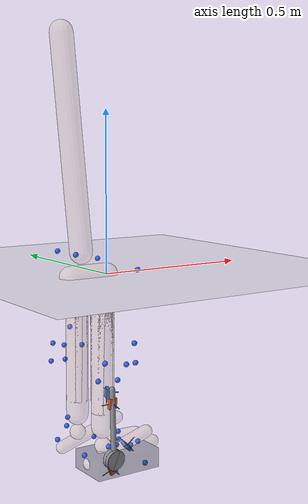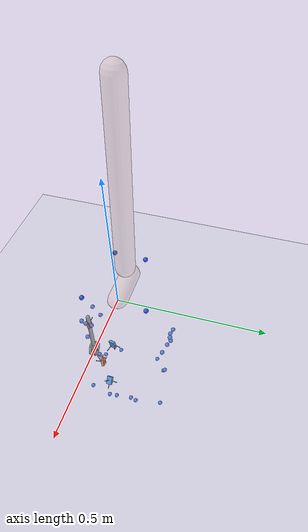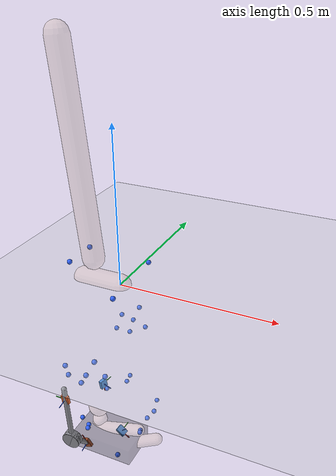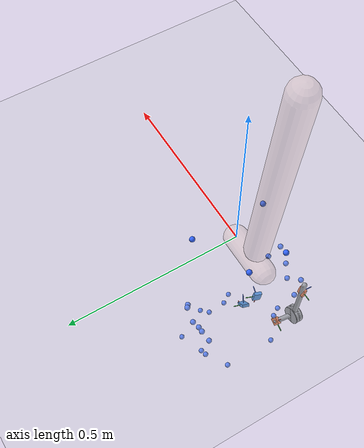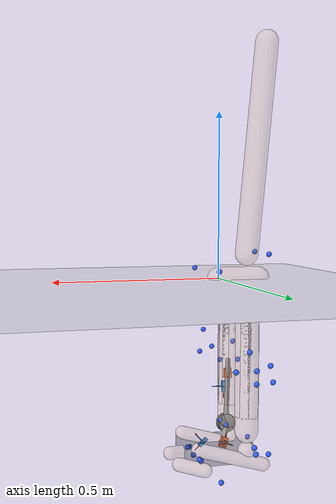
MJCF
<mujoco model="AB13">
  <compiler angle="radian" autolimits="true"/>
  <option timestep="0.005" gravity="0 0 -9.81"><flag contact="disable"/></option>
  <visual><global offwidth="1600" offheight="1200"/>
    <headlight ambient="0.55 0.55 0.55" diffuse="0.6 0.6 0.6"/></visual>
  <default><joint limited="false" damping="0"/><geom contype="0" conaffinity="0"/></default>
  <asset>
    <texture name="grid" type="2d" builtin="checker" rgb1="0.75 0.77 0.8" rgb2="0.85 0.87 0.9" width="512" height="512"/>
    <material name="grid" texture="grid" texrepeat="2 2" texuniform="true"/>
    <material name="skin" rgba="0.85 0.72 0.62 0.28"/>
  </asset>
  <worldbody>
    <light pos="0 0 4" dir="0 0 -1"/>
    <geom name="floor" type="plane" size="0 0 0.05" material="grid"/>
    <body name="pelvis" pos="0 0 0" quat="1 0 0 0">
      <joint name="pelvis_tx" type="slide" axis="1 0 0"/>
      <joint name="pelvis_ty" type="slide" axis="0 0 1"/>
      <joint name="pelvis_tz" type="slide" axis="0 -1 0"/>
      <joint name="pelvis_tilt" type="hinge" axis="0 -1 0"/>
      <joint name="pelvis_list" type="hinge" axis="1 0 0"/>
      <joint name="pelvis_rotation" type="hinge" axis="0 0 1"/>
      <inertial pos="-0.063103539 0 0" mass="8.94477" diaginertia="0.089447731 0.089447731 0.089447731"/>
      <geom type="capsule" fromto="0 0 0 -0.12620708 0 0" size="0.035" material="skin" mass="0"/>
      <site name="m_R_ASIS" pos="0.039352772 -0.1105126 0.024330353" size="0.008" rgba="0.2 0.4 1 1" group="2"/>
      <site name="m_L_ASIS" pos="0.039034642 0.11411929 0.031244651" size="0.008" rgba="0.2 0.4 1 1" group="2"/>
      <site name="m_L_PSIS" pos="-0.13862256 0.05601487 0.07470009" size="0.008" rgba="0.2 0.4 1 1" group="2"/>
      <site name="m_R_PSIS" pos="-0.1399088 -0.054829012 0.075996452" size="0.008" rgba="0.2 0.4 1 1" group="2"/>
      <body name="femur_r" pos="-0.063103539 -0.074528224 -0.058997792" quat="1 0 0 0">
        <joint name="hip_flexion_r" type="hinge" axis="0 -1 0"/>
        <joint name="hip_adduction_r" type="hinge" axis="1 0 0"/>
        <joint name="hip_rotation_r" type="hinge" axis="0 0 1"/>
        <inertial pos="0 0 -0.17254222" mass="7.06453" diaginertia="0.070645251 0.070645251 0.070645251"/>
        <geom type="capsule" fromto="0 0 0 0 0 -0.34508443" size="0.035" material="skin" mass="0"/>
        <site name="m_R_Thigh_Upper" pos="0.056050089 -0.087431832 -0.12410132" size="0.008" rgba="0.2 0.4 1 1" group="2"/>
        <site name="m_R_Thigh_Front" pos="0.075307148 -0.064751227 -0.19057419" size="0.008" rgba="0.2 0.4 1 1" group="2"/>
        <site name="m_R_Thigh_Rear" pos="0.02474407 -0.092379118 -0.18217937" size="0.008" rgba="0.2 0.4 1 1" group="2"/>
        <site name="m_R_Knee_Lat" pos="0.000352359 -0.074967183 -0.42578159" size="0.008" rgba="0.2 0.4 1 1" group="2"/>
        <body name="tibia_r" pos="0 0 0" quat="1 0 0 0">
<geom name="gt_shank_axis_x" type="capsule" size="0.0012" fromto="0.02010 0.00490 -0.29100 0.02078 0.01085 -0.32549" rgba="1 0.1 0.1 1" contype="0" conaffinity="0" mass="0"/>
<geom name="gt_shank_axis_y" type="capsule" size="0.0012" fromto="0.02010 0.00490 -0.29100 0.02994 0.03797 -0.28510" rgba="0.1 0.8 0.1 1" contype="0" conaffinity="0" mass="0"/>
<geom name="gt_shank_axis_z" type="capsule" size="0.0012" fromto="0.02010 0.00490 -0.29100 0.05368 -0.00491 -0.29203" rgba="0.1 0.3 1 1" contype="0" conaffinity="0" mass="0"/>
<geom name="exo_shank_axis_x" type="capsule" size="0.0012" fromto="-0.04149 -0.12005 -0.28117 -0.04210 -0.12588 -0.24666" rgba="1 0.1 0.1 1" contype="0" conaffinity="0" mass="0"/>
<geom name="exo_shank_axis_y" type="capsule" size="0.0012" fromto="-0.04149 -0.12005 -0.28117 -0.07648 -0.11989 -0.28176" rgba="0.1 0.8 0.1 1" contype="0" conaffinity="0" mass="0"/>
<geom name="exo_shank_axis_z" type="capsule" size="0.0012" fromto="-0.04149 -0.12005 -0.28117 -0.04155 -0.15456 -0.28700" rgba="0.1 0.3 1 1" contype="0" conaffinity="0" mass="0"/>
<geom name="encoder_shank" type="cylinder" size="0.03 0.012" fromto="-0.03483 -0.12896 -0.45068 -0.03537 -0.10504 -0.44872" rgba="0.55 0.55 0.58 1" contype="0" conaffinity="0" mass="0"/>
<geom name="strut_shank" type="capsule" size="0.008" fromto="-0.03510 -0.11700 -0.44970 -0.04309 -0.12081 -0.23903" rgba="0.55 0.55 0.58 1" contype="0" conaffinity="0" mass="0"/>
          <joint name="knee_r_translation1" type="slide" axis="1 0 0"/>
          <joint name="knee_r_translation2" type="slide" axis="0 0 1"/>
          <joint name="knee_angle_r" type="hinge" axis="0 -1 0"/>
          <inertial pos="0 0 -0.1952618" mass="2.81589" diaginertia="0.028158908 0.028158908 0.028158908"/>
          <geom type="capsule" fromto="0 0 0 0 0 -0.39052359" size="0.035" material="skin" mass="0"/>
          <site name="m_R_Shank_Upper" pos="-0.049004611 -0.093072431 -0.16876278" size="0.008" rgba="0.2 0.4 1 1" group="2"/>
          <site name="m_R_Shank_Front" pos="-0.00089466071 -0.084805157 -0.22680498" size="0.008" rgba="0.2 0.4 1 1" group="2"/>
          <site name="m_R_Shank_Rear" pos="-0.058529922 -0.070479426 -0.22546314" size="0.008" rgba="0.2 0.4 1 1" group="2"/>
          <site name="m_R_Ankle_Lat" pos="-0.011698413 -0.052401136 -0.43580038" size="0.008" rgba="0.2 0.4 1 1" group="2"/>
          <site name="gt_shank_imu" type="box" size="0.016 0.012 0.005" pos="0.0201 0.0049 -0.291" quat="0.69544376 0.16130102 0.69910271 -0.039941962" rgba="0.16 0.47 0.84 1" group="1"/>
          <site name="exo_shank_imu" type="box" size="0.016 0.012 0.005" pos="-0.041489 -0.120048 -0.281168" quat="-0.45291564 -0.53495855 0.54514433 -0.45989612" rgba="0.92 0.41 0.20 1" group="1"/>
          <body name="talus_r" pos="0 0 -0.44971919" quat="1 0 0 0">
            <joint name="ankle_angle_r" type="hinge" axis="-0.10501355 -0.97912632 -0.17402245"/>
            <inertial pos="0 0 0" mass="0.0759512" diaginertia="0.00075951202 0.00075951202 0.00075951202"/>
            <geom type="sphere" size="0.025" material="skin" mass="0"/>
            <body name="calcn_r" pos="-0.051006523 -0.0082832 -0.043873767" quat="1 0 0 0">
<geom name="gt_foot_axis_x" type="capsule" size="0.0012" fromto="0.13570 0.00630 0.02540 0.16245 0.00749 0.00287" rgba="1 0.1 0.1 1" contype="0" conaffinity="0" mass="0"/>
<geom name="gt_foot_axis_y" type="capsule" size="0.0012" fromto="0.13570 0.00630 0.02540 0.14158 0.03968 0.03414" rgba="0.1 0.8 0.1 1" contype="0" conaffinity="0" mass="0"/>
<geom name="gt_foot_axis_z" type="capsule" size="0.0012" fromto="0.13570 0.00630 0.02540 0.15748 -0.00417 0.05071" rgba="0.1 0.3 1 1" contype="0" conaffinity="0" mass="0"/>
<geom name="exo_foot_axis_x" type="capsule" size="0.0012" fromto="0.04080 -0.06242 -0.00603 0.02706 -0.06786 0.02570" rgba="1 0.1 0.1 1" contype="0" conaffinity="0" mass="0"/>
<geom name="exo_foot_axis_y" type="capsule" size="0.0012" fromto="0.04080 -0.06242 -0.00603 0.00862 -0.06096 -0.01971" rgba="0.1 0.8 0.1 1" contype="0" conaffinity="0" mass="0"/>
<geom name="exo_foot_axis_z" type="capsule" size="0.0012" fromto="0.04080 -0.06242 -0.00603 0.04160 -0.09696 -0.01161" rgba="0.1 0.3 1 1" contype="0" conaffinity="0" mass="0"/>
<geom name="encoder_foot" type="cylinder" size="0.03 0.012" fromto="0.01677 -0.12071 0.04269 0.01503 -0.09689 0.04511" rgba="0.55 0.55 0.58 1" contype="0" conaffinity="0" mass="0"/>
<geom name="strut_foot" type="capsule" size="0.008" fromto="0.01590 -0.10880 0.04390 0.04080 -0.06242 -0.00603" rgba="0.55 0.55 0.58 1" contype="0" conaffinity="0" mass="0"/>
<geom name="shoe" type="box" pos="0.09659 -0.00167 -0.00165" size="0.10667 0.06772 0.03000" rgba="0.15 0.15 0.18 0.35" contype="0" conaffinity="0" mass="0"/>
              <joint name="subtalar_angle_r" type="hinge" axis="0.78717961 0.12094949 0.60474746"/>
              <inertial pos="0.10182156 0 0.030546467" mass="0.94939" diaginertia="0.0094939003 0.0094939003 0.0094939003"/>
              <geom type="capsule" fromto="0 0 0 0.20364312 0 0.061092935" size="0.02" material="skin" mass="0"/>
              <site name="m_R_Heel" pos="-0.017076583 0.0017945102 0.028101511" size="0.008" rgba="0.2 0.4 1 1" group="2"/>
              <site name="m_R_Toe_Lat" pos="0.15747793 -0.062856129 -0.011647716" size="0.008" rgba="0.2 0.4 1 1" group="2"/>
              <site name="m_R_Toe_Med" pos="0.18189576 0.052573952 0.0043415588" size="0.008" rgba="0.2 0.4 1 1" group="2"/>
              <site name="m_R_Toe_Tip" pos="0.19326144 0.028310197 0.021770381" size="0.008" rgba="0.2 0.4 1 1" group="2"/>
              <site name="gt_foot_imu" type="box" size="0.016 0.012 0.005" pos="0.1357 0.0063 0.0254" quat="0.92753 0.14797554 0.34129584 -0.036173058" rgba="0.16 0.47 0.84 1" group="1"/>
              <site name="exo_foot_imu" type="box" size="0.016 0.012 0.005" pos="0.040799 -0.062419 -0.006031" quat="-0.34994454 -0.42581129 0.63118118 -0.54574159" rgba="0.92 0.41 0.20 1" group="1"/>
              <body name="toes_r" pos="0.18205695 -0.0010996728 -0.0020364312" quat="1 0 0 0">
                <joint name="mtp_angle_r" type="hinge" axis="-0.5809544 -0.81393611 0"/>
                <inertial pos="0.035230259 0.017818773 0.0061092935" mass="0.16451" diaginertia="0.001645103 0.001645103 0.001645103"/>
                <geom type="capsule" fromto="0 0 0 0.070460518 0.035637545 0.012218587" size="0.02" material="skin" mass="0"/>
              </body>
            </body>
          </body>
        </body>
      </body>
      <body name="femur_l" pos="-0.063103539 0.074528224 -0.058997792" quat="1 0 0 0">
        <joint name="hip_flexion_l" type="hinge" axis="0 -1 0"/>
        <joint name="hip_adduction_l" type="hinge" axis="-1 0 0"/>
        <joint name="hip_rotation_l" type="hinge" axis="0 0 -1"/>
        <inertial pos="0 0 -0.17254222" mass="7.06453" diaginertia="0.070645251 0.070645251 0.070645251"/>
        <geom type="capsule" fromto="0 0 0 0 0 -0.34508443" size="0.035" material="skin" mass="0"/>
        <site name="m_L_Thigh_Upper" pos="0.031527582 0.097124482 -0.13334903" size="0.008" rgba="0.2 0.4 1 1" group="2"/>
        <site name="m_L_Thigh_Front" pos="0.063508 0.076154799 -0.19309016" size="0.008" rgba="0.2 0.4 1 1" group="2"/>
        <site name="m_L_Thigh_Rear" pos="0.0073502552 0.092837141 -0.18935716" size="0.008" rgba="0.2 0.4 1 1" group="2"/>
        <site name="m_L_Knee_Lat" pos="0.00094312557 0.064367779 -0.42075209" size="0.008" rgba="0.2 0.4 1 1" group="2"/>
        <body name="tibia_l" pos="0 0 0" quat="1 0 0 0">
          <joint name="knee_l_translation1" type="slide" axis="1 0 0"/>
          <joint name="knee_l_translation2" type="slide" axis="0 0 1"/>
          <joint name="knee_angle_l" type="hinge" axis="0 -1 0"/>
          <inertial pos="0 0 -0.1952618" mass="2.81589" diaginertia="0.028158908 0.028158908 0.028158908"/>
          <geom type="capsule" fromto="0 0 0 0 0 -0.39052359" size="0.035" material="skin" mass="0"/>
          <site name="m_L_Shank_Upper" pos="-0.035413185 0.089590862 -0.17702488" size="0.008" rgba="0.2 0.4 1 1" group="2"/>
          <site name="m_L_Shank_Front" pos="0.0010802266 0.076687175 -0.2317599" size="0.008" rgba="0.2 0.4 1 1" group="2"/>
          <site name="m_L_Shank_Rear" pos="-0.050949324 0.073882888 -0.22950162" size="0.008" rgba="0.2 0.4 1 1" group="2"/>
          <site name="m_L_Ankle_Lat" pos="-0.0085602449 0.054162286 -0.44458636" size="0.008" rgba="0.2 0.4 1 1" group="2"/>
          <body name="talus_l" pos="0 0 -0.44971919" quat="1 0 0 0">
            <joint name="ankle_angle_l" type="hinge" axis="0.10501355 -0.97912632 0.17402245"/>
            <inertial pos="0 0 0" mass="0.0759512" diaginertia="0.00075951202 0.00075951202 0.00075951202"/>
            <geom type="sphere" size="0.025" material="skin" mass="0"/>
            <body name="calcn_l" pos="-0.051006523 0.0082832 -0.043873767" quat="1 0 0 0">
              <joint name="subtalar_angle_l" type="hinge" axis="-0.78717961 0.12094949 -0.60474746"/>
              <inertial pos="0.10182156 0 0.030546467" mass="0.94939" diaginertia="0.0094939003 0.0094939003 0.0094939003"/>
              <geom type="capsule" fromto="0 0 0 0.20364312 0 0.061092935" size="0.02" material="skin" mass="0"/>
              <site name="m_L_Heel" pos="-0.016807259 0.00037823316 0.028332843" size="0.008" rgba="0.2 0.4 1 1" group="2"/>
              <site name="m_L_Toe_Lat" pos="0.15641348 0.065060251 -0.015121034" size="0.008" rgba="0.2 0.4 1 1" group="2"/>
              <site name="m_L_Toe_Med" pos="0.1770321 -0.052869215 0.0063685676" size="0.008" rgba="0.2 0.4 1 1" group="2"/>
              <site name="m_L_Toe_Tip" pos="0.19117915 -0.026866516 0.022216184" size="0.008" rgba="0.2 0.4 1 1" group="2"/>
              <body name="toes_l" pos="0.18205695 0.0010996728 -0.0020364312" quat="1 0 0 0">
                <joint name="mtp_angle_l" type="hinge" axis="0.5809544 -0.81393611 0"/>
                <inertial pos="0.035230259 -0.017818773 0.0061092935" mass="0.16451" diaginertia="0.001645103 0.001645103 0.001645103"/>
                <geom type="capsule" fromto="0 0 0 0.070460518 -0.035637545 0.012218587" size="0.02" material="skin" mass="0"/>
              </body>
            </body>
          </body>
        </body>
      </body>
      <body name="torso" pos="-0.089880146 0 0.072743117" quat="1 0 0 0">
        <joint name="lumbar_extension" type="hinge" axis="0 -1 0"/>
        <joint name="lumbar_bending" type="hinge" axis="1 0 0"/>
        <joint name="lumbar_rotation" type="hinge" axis="0 0 1"/>
        <inertial pos="-0.030036744 0 0.32039194" mass="26.0031" diaginertia="0.26003109 0.26003109 0.26003109"/>
        <geom type="capsule" fromto="0 0 0 -0.060073489 0 0.64078388" size="0.035" material="skin" mass="0"/>
      </body>
    </body>
  </worldbody>
  <sensor>
<accelerometer name="gt_foot_imu_acc" site="gt_foot_imu"/>
<gyro name="gt_foot_imu_gyr" site="gt_foot_imu"/>
<accelerometer name="exo_foot_imu_acc" site="exo_foot_imu"/>
<gyro name="exo_foot_imu_gyr" site="exo_foot_imu"/>
<accelerometer name="gt_shank_imu_acc" site="gt_shank_imu"/>
<gyro name="gt_shank_imu_gyr" site="gt_shank_imu"/>
<accelerometer name="exo_shank_imu_acc" site="exo_shank_imu"/>
<gyro name="exo_shank_imu_gyr" site="exo_shank_imu"/>
</sensor>
</mujoco>
